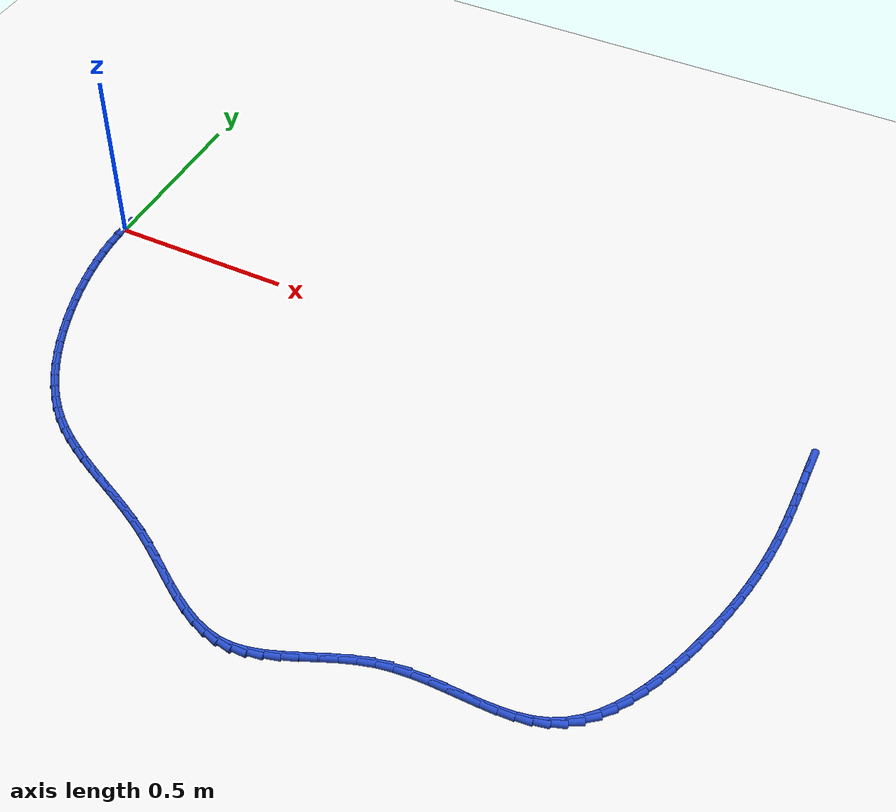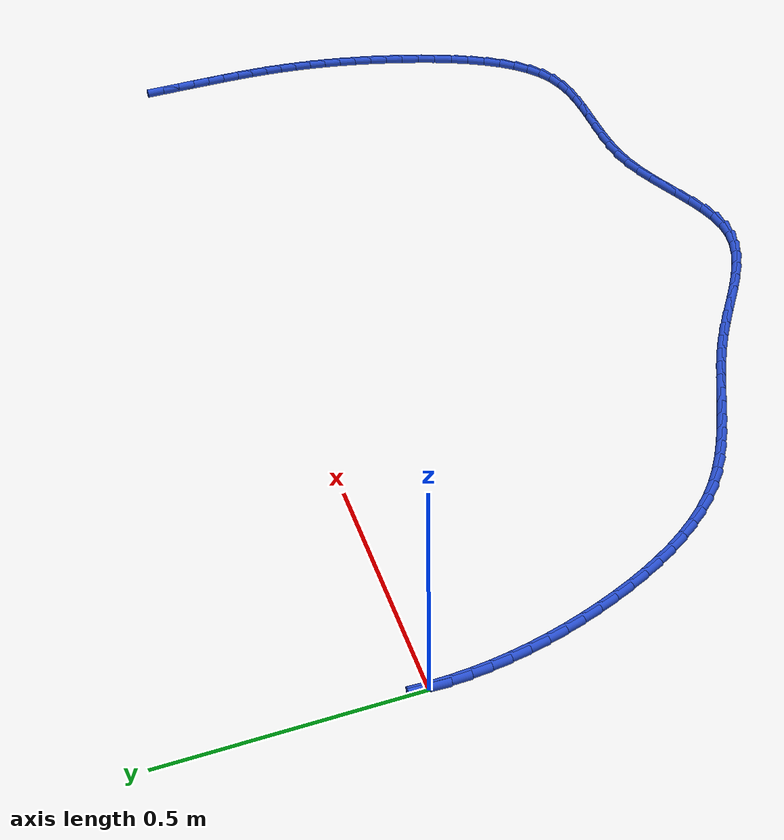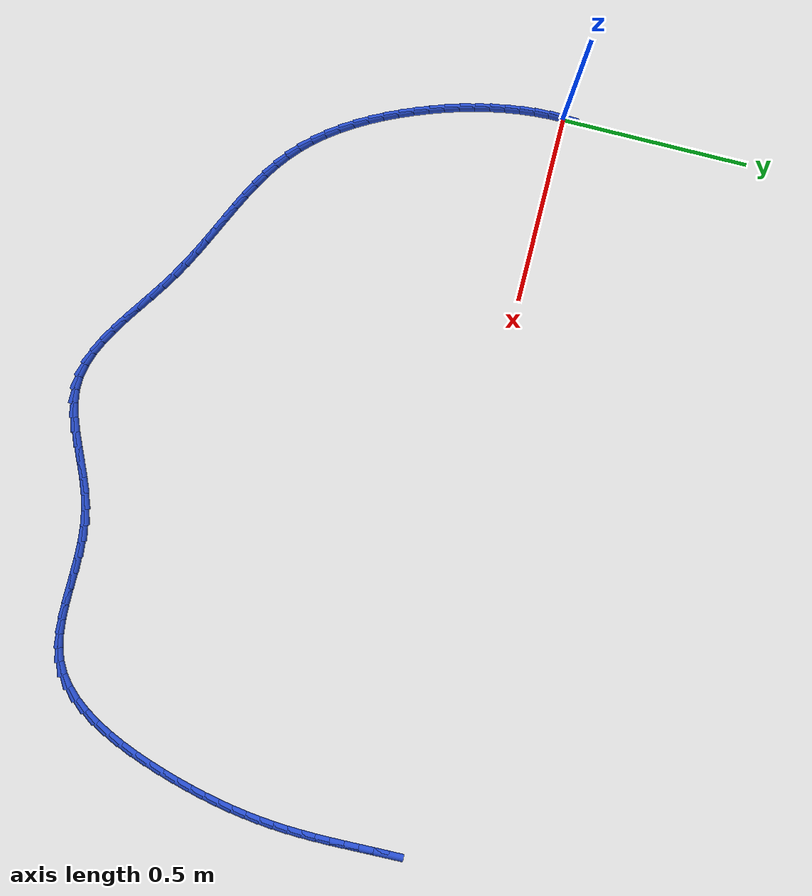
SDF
<sdf version="1.6">
 <world name="default">
  <model name="ground_plane">
   <static>1</static>
   <link name="link">
    <collision name="collision">
     <geometry><plane><normal>0 0 1</normal><size>100 100</size></plane></geometry>
     <surface><friction><ode><mu>100</mu><mu2>50</mu2></ode></friction></surface>
    </collision>
    <visual name="visual">
     <cast_shadows>0</cast_shadows>
     <geometry><plane><normal>0 0 1</normal><size>100 100</size></plane></geometry>
     <material>
      <script><uri>file://media/materials/scripts/gazebo.material</uri><name>Gazebo/WhiteGlow</name></script>
     </material>
    </visual>
   </link>
  </model>
  <model name="line">
   <link name="link_0">
    <pose>-8.673617379884035e-18 -6.938893903907228e-18 0.01 0 1.57 1.5354247967208827</pose>
    <collision name="collision">
     <geometry><cylinder><radius>0.01</radius><length>0.08</length></cylinder></geometry>
    </collision>
    <visual name="visual">
     <material>
      <script><name>Gazebo/Blue</name><uri>file://media/materials/scripts/gazebo.material</uri></script>
     </material>
     <geometry><cylinder><radius>0.01</radius><length>0.08</length></cylinder></geometry>
    </visual>
   </link>
   <link name="link_86">
    <pose>1.9871273706967785 0.016512501588791424 0.01 0 1.57 -1.5531184839204828</pose>
    <collision name="collision">
     <geometry><cylinder><radius>0.01</radius><length>0.08</length></cylinder></geometry>
    </collision>
    <visual name="visual">
     <material>
      <script><name>Gazebo/Blue</name><uri>file://media/materials/scripts/gazebo.material</uri></script>
     </material>
     <geometry><cylinder><radius>0.01</radius><length>0.08</length></cylinder></geometry>
    </visual>
   </link>
   <link name="link_87">
    <pose>1.987824887404786 -0.022940504755535045 0.01 0 1.57 -1.5491338630941902</pose>
    <collision name="collision">
     <geometry><cylinder><radius>0.01</radius><length>0.08</length></cylinder></geometry>
    </collision>
    <visual name="visual">
     <material>
      <script><name>Gazebo/Blue</name><uri>file://media/materials/scripts/gazebo.material</uri></script>
     </material>
     <geometry><cylinder><radius>0.01</radius><length>0.08</length></cylinder></geometry>
    </visual>
   </link>
   <link name="link_88">
    <pose>1.9886739223915606 -0.062128206931765746 0.01 0 1.57 -1.550380317947447</pose>
    <collision name="collision">
     <geometry><cylinder><radius>0.01</radius><length>0.08</length></cylinder></geometry>
    </collision>
    <visual name="visual">
     <material>
      <script><name>Gazebo/Blue</name><uri>file://media/materials/scripts/gazebo.material</uri></script>
     </material>
     <geometry><cylinder><radius>0.01</radius><length>0.08</length></cylinder></geometry>
    </visual>
   </link>
   <link name="link_89">
    <pose>1.9894693003985673 -0.1010813393389412 0.01 0 1.57 -1.5569506180114507</pose>
    <collision name="collision">
     <geometry><cylinder><radius>0.01</radius><length>0.08</length></cylinder></geometry>
    </collision>
    <visual name="visual">
     <material>
      <script><name>Gazebo/Blue</name><uri>file://media/materials/scripts/gazebo.material</uri></script>
     </material>
     <geometry><cylinder><radius>0.01</radius><length>0.08</length></cylinder></geometry>
    </visual>
   </link>
   <link name="link_90">
    <pose>1.990005846167273 -0.13983063637609974 0.01 0 1.57 -1.568915939567218</pose>
    <collision name="collision">
     <geometry><cylinder><radius>0.01</radius><length>0.08</length></cylinder></geometry>
    </collision>
    <visual name="visual">
     <material>
      <script><name>Gazebo/Blue</name><uri>file://media/materials/scripts/gazebo.material</uri></script>
     </material>
     <geometry><cylinder><radius>0.01</radius><length>0.08</length></cylinder></geometry>
    </visual>
   </link>
   <link name="link_91">
    <pose>1.9900783844391432 -0.17840683244228195 0.01 0 1.57 1.5552736331345296</pose>
    <collision name="collision">
     <geometry><cylinder><radius>0.01</radius><length>0.08</length></cylinder></geometry>
    </collision>
    <visual name="visual">
     <material>
      <script><name>Gazebo/Blue</name><uri>file://media/materials/scripts/gazebo.material</uri></script>
     </material>
     <geometry><cylinder><radius>0.01</radius><length>0.08</length></cylinder></geometry>
    </visual>
   </link>
   <link name="link_92">
    <pose>1.9894817399556441 -0.21684066193652746 0.01 0 1.57 1.5324300333425418</pose>
    <collision name="collision">
     <geometry><cylinder><radius>0.01</radius><length>0.08</length></cylinder></geometry>
    </collision>
    <visual name="visual">
     <material>
      <script><name>Gazebo/Blue</name><uri>file://media/materials/scripts/gazebo.material</uri></script>
     </material>
     <geometry><cylinder><radius>0.01</radius><length>0.08</length></cylinder></geometry>
    </visual>
   </link>
   <link name="link_93">
    <pose>1.9880107374582423 -0.2551628592578762 0.01 0 1.57 1.5047178984376517</pose>
    <collision name="collision">
     <geometry><cylinder><radius>0.01</radius><length>0.08</length></cylinder></geometry>
    </collision>
    <visual name="visual">
     <material>
      <script><name>Gazebo/Blue</name><uri>file://media/materials/scripts/gazebo.material</uri></script>
     </material>
     <geometry><cylinder><radius>0.01</radius><length>0.08</length></cylinder></geometry>
    </visual>
   </link>
   <link name="link_94">
    <pose>1.9854797855414854 -0.29340933735297303 0.01 0 1.57 1.475460703808413</pose>
    <collision name="collision">
     <geometry><cylinder><radius>0.01</radius><length>0.08</length></cylinder></geometry>
    </collision>
    <visual name="visual">
     <material>
      <script><name>Gazebo/Blue</name><uri>file://media/materials/scripts/gazebo.material</uri></script>
     </material>
     <geometry><cylinder><radius>0.01</radius><length>0.08</length></cylinder></geometry>
    </visual>
   </link>
   <link name="link_95">
    <pose>1.9818232206098407 -0.33164772161392025 0.01 0 1.57 1.4460886202512069</pose>
    <collision name="collision">
     <geometry><cylinder><radius>0.01</radius><length>0.08</length></cylinder></geometry>
    </collision>
    <visual name="visual">
     <material>
      <script><name>Gazebo/Blue</name><uri>file://media/materials/scripts/gazebo.material</uri></script>
     </material>
     <geometry><cylinder><radius>0.01</radius><length>0.08</length></cylinder></geometry>
    </visual>
   </link>
   <link name="link_96">
    <pose>1.9770207571178047 -0.36995763672587695 0.01 0 1.57 1.416839941180229</pose>
    <collision name="collision">
     <geometry><cylinder><radius>0.01</radius><length>0.08</length></cylinder></geometry>
    </collision>
    <visual name="visual">
     <material>
      <script><name>Gazebo/Blue</name><uri>file://media/materials/scripts/gazebo.material</uri></script>
     </material>
     <geometry><cylinder><radius>0.01</radius><length>0.08</length></cylinder></geometry>
    </visual>
   </link>
   <link name="link_97">
    <pose>1.971052194785527 -0.40841872992075173 0.01 0 1.57 1.3879431167841505</pose>
    <collision name="collision">
     <geometry><cylinder><radius>0.01</radius><length>0.08</length></cylinder></geometry>
    </collision>
    <visual name="visual">
     <material>
      <script><name>Gazebo/Blue</name><uri>file://media/materials/scripts/gazebo.material</uri></script>
     </material>
     <geometry><cylinder><radius>0.01</radius><length>0.08</length></cylinder></geometry>
    </visual>
   </link>
   <link name="link_98">
    <pose>1.9638973333331569 -0.447110648430453 0.01 0 1.57 1.3596121562966297</pose>
    <collision name="collision">
     <geometry><cylinder><radius>0.01</radius><length>0.08</length></cylinder></geometry>
    </collision>
    <visual name="visual">
     <material>
      <script><name>Gazebo/Blue</name><uri>file://media/materials/scripts/gazebo.material</uri></script>
     </material>
     <geometry><cylinder><radius>0.01</radius><length>0.08</length></cylinder></geometry>
    </visual>
   </link>
   <link name="link_99">
    <pose>1.955535972480845 -0.48611303948689044 0.01 0 1.57 1.3320408455141721</pose>
    <collision name="collision">
     <geometry><cylinder><radius>0.01</radius><length>0.08</length></cylinder></geometry>
    </collision>
    <visual name="visual">
     <material>
      <script><name>Gazebo/Blue</name><uri>file://media/materials/scripts/gazebo.material</uri></script>
     </material>
     <geometry><cylinder><radius>0.01</radius><length>0.08</length></cylinder></geometry>
    </visual>
   </link>
   <link name="link_100">
    <pose>1.9459479119487402 -0.5255055503219712 0.01 0 1.57 1.3053983681405932</pose>
    <collision name="collision">
     <geometry><cylinder><radius>0.01</radius><length>0.08</length></cylinder></geometry>
    </collision>
    <visual name="visual">
     <material>
      <script><name>Gazebo/Blue</name><uri>file://media/materials/scripts/gazebo.material</uri></script>
     </material>
     <geometry><cylinder><radius>0.01</radius><length>0.08</length></cylinder></geometry>
    </visual>
   </link>
   <link name="link_101">
    <pose>1.9351129514569925 -0.5653678281676042 0.01 0 1.57 1.279826493453787</pose>
    <collision name="collision">
     <geometry><cylinder><radius>0.01</radius><length>0.08</length></cylinder></geometry>
    </collision>
    <visual name="visual">
     <material>
      <script><name>Gazebo/Blue</name><uri>file://media/materials/scripts/gazebo.material</uri></script>
     </material>
     <geometry><cylinder><radius>0.01</radius><length>0.08</length></cylinder></geometry>
    </visual>
   </link>
   <link name="link_102">
    <pose>1.9230108907257522 -0.6057795202556986 0.01 0 1.57 1.254344058319762</pose>
    <collision name="collision">
     <geometry><cylinder><radius>0.01</radius><length>0.08</length></cylinder></geometry>
    </collision>
    <visual name="visual">
     <material>
      <script><name>Gazebo/Blue</name><uri>file://media/materials/scripts/gazebo.material</uri></script>
     </material>
     <geometry><cylinder><radius>0.01</radius><length>0.08</length></cylinder></geometry>
    </visual>
   </link>
   <link name="link_103">
    <pose>1.9096048084788897 -0.6467195387782416 0.01 0 1.57 1.223397689288586</pose>
    <collision name="collision">
     <geometry><cylinder><radius>0.01</radius><length>0.08</length></cylinder></geometry>
    </collision>
    <visual name="visual">
     <material>
      <script><name>Gazebo/Blue</name><uri>file://media/materials/scripts/gazebo.material</uri></script>
     </material>
     <geometry><cylinder><radius>0.01</radius><length>0.08</length></cylinder></geometry>
    </visual>
   </link>
   <link name="link_104">
    <pose>1.8947759521301806 -0.687673806146413 0.01 0 1.57 1.184446658937928</pose>
    <collision name="collision">
     <geometry><cylinder><radius>0.01</radius><length>0.08</length></cylinder></geometry>
    </collision>
    <visual name="visual">
     <material>
      <script><name>Gazebo/Blue</name><uri>file://media/materials/scripts/gazebo.material</uri></script>
     </material>
     <geometry><cylinder><radius>0.01</radius><length>0.08</length></cylinder></geometry>
    </visual>
   </link>
   <link name="link_105">
    <pose>1.878380575174376 -0.7279776698063178 0.01 0 1.57 1.1360475936975376</pose>
    <collision name="collision">
     <geometry><cylinder><radius>0.01</radius><length>0.08</length></cylinder></geometry>
    </collision>
    <visual name="visual">
     <material>
      <script><name>Gazebo/Blue</name><uri>file://media/materials/scripts/gazebo.material</uri></script>
     </material>
     <geometry><cylinder><radius>0.01</radius><length>0.08</length></cylinder></geometry>
    </visual>
   </link>
   <link name="link_106">
    <pose>1.8602749248964308 -0.7669664397933569 0.01 0 1.57 1.0761899053514712</pose>
    <collision name="collision">
     <geometry><cylinder><radius>0.01</radius><length>0.08</length></cylinder></geometry>
    </collision>
    <visual name="visual">
     <material>
      <script><name>Gazebo/Blue</name><uri>file://media/materials/scripts/gazebo.material</uri></script>
     </material>
     <geometry><cylinder><radius>0.01</radius><length>0.08</length></cylinder></geometry>
    </visual>
   </link>
   <link name="link_107">
    <pose>1.8403152485812968 -0.80397542614293 0.01 0 1.57 1.0022232243886162</pose>
    <collision name="collision">
     <geometry><cylinder><radius>0.01</radius><length>0.08</length></cylinder></geometry>
    </collision>
    <visual name="visual">
     <material>
      <script><name>Gazebo/Blue</name><uri>file://media/materials/scripts/gazebo.material</uri></script>
     </material>
     <geometry><cylinder><radius>0.01</radius><length>0.08</length></cylinder></geometry>
    </visual>
   </link>
   <link name="link_108">
    <pose>1.8183577935139283 -0.8383399388904377 0.01 0 1.57 0.9108610900474269</pose>
    <collision name="collision">
     <geometry><cylinder><radius>0.01</radius><length>0.08</length></cylinder></geometry>
    </collision>
    <visual name="visual">
     <material>
      <script><name>Gazebo/Blue</name><uri>file://media/materials/scripts/gazebo.material</uri></script>
     </material>
     <geometry><cylinder><radius>0.01</radius><length>0.08</length></cylinder></geometry>
    </visual>
   </link>
   <link name="link_109">
    <pose>1.7942588069792786 -0.8693952880712793 0.01 0 1.57 0.7984380104131765</pose>
    <collision name="collision">
     <geometry><cylinder><radius>0.01</radius><length>0.08</length></cylinder></geometry>
    </collision>
    <visual name="visual">
     <material>
      <script><name>Gazebo/Blue</name><uri>file://media/materials/scripts/gazebo.material</uri></script>
     </material>
     <geometry><cylinder><radius>0.01</radius><length>0.08</length></cylinder></geometry>
    </visual>
   </link>
   <link name="link_110">
    <pose>1.767874536262302 -0.8964767837208562 0.01 0 1.57 0.6617477837319509</pose>
    <collision name="collision">
     <geometry><cylinder><radius>0.01</radius><length>0.08</length></cylinder></geometry>
    </collision>
    <visual name="visual">
     <material>
      <script><name>Gazebo/Blue</name><uri>file://media/materials/scripts/gazebo.material</uri></script>
     </material>
     <geometry><cylinder><radius>0.01</radius><length>0.08</length></cylinder></geometry>
    </visual>
   </link>
   <link name="link_111">
    <pose>1.7390612286479519 -0.9189197358745662 0.01 0 1.57 0.49998367376421343</pose>
    <collision name="collision">
     <geometry><cylinder><radius>0.01</radius><length>0.08</length></cylinder></geometry>
    </collision>
    <visual name="visual">
     <material>
      <script><name>Gazebo/Blue</name><uri>file://media/materials/scripts/gazebo.material</uri></script>
     </material>
     <geometry><cylinder><radius>0.01</radius><length>0.08</length></cylinder></geometry>
    </visual>
   </link>
   <link name="link_112">
    <pose>1.707676652923351 -0.9360645424280091 0.01 0 1.57 0.33276255093690854</pose>
    <collision name="collision">
     <geometry><cylinder><radius>0.01</radius><length>0.08</length></cylinder></geometry>
    </collision>
    <visual name="visual">
     <material>
      <script><name>Gazebo/Blue</name><uri>file://media/materials/scripts/gazebo.material</uri></script>
     </material>
     <geometry><cylinder><radius>0.01</radius><length>0.08</length></cylinder></geometry>
    </visual>
   </link>
   <link name="link_113">
    <pose>1.6737405822214424 -0.9477933392250637 0.01 0 1.57 0.1967735387246202</pose>
    <collision name="collision">
     <geometry><cylinder><radius>0.01</radius><length>0.08</length></cylinder></geometry>
    </collision>
    <visual name="visual">
     <material>
      <script><name>Gazebo/Blue</name><uri>file://media/materials/scripts/gazebo.material</uri></script>
     </material>
     <geometry><cylinder><radius>0.01</radius><length>0.08</length></cylinder></geometry>
    </visual>
   </link>
   <link name="link_114">
    <pose>1.637576190437196 -0.9550028256726496 0.01 0 1.57 0.09692806313039837</pose>
    <collision name="collision">
     <geometry><cylinder><radius>0.01</radius><length>0.08</length></cylinder></geometry>
    </collision>
    <visual name="visual">
     <material>
      <script><name>Gazebo/Blue</name><uri>file://media/materials/scripts/gazebo.material</uri></script>
     </material>
     <geometry><cylinder><radius>0.01</radius><length>0.08</length></cylinder></geometry>
    </visual>
   </link>
   <link name="link_115">
    <pose>1.5995399917387267 -0.9587011901076786 0.01 0 1.57 0.03021547087737187</pose>
    <collision name="collision">
     <geometry><cylinder><radius>0.01</radius><length>0.08</length></cylinder></geometry>
    </collision>
    <visual name="visual">
     <material>
      <script><name>Gazebo/Blue</name><uri>file://media/materials/scripts/gazebo.material</uri></script>
     </material>
     <geometry><cylinder><radius>0.01</radius><length>0.08</length></cylinder></geometry>
    </visual>
   </link>
   <link name="link_116">
    <pose>1.5599885002941516 -0.9598966208670618 0.01 0 1.57 -0.007352178849760305</pose>
    <collision name="collision">
     <geometry><cylinder><radius>0.01</radius><length>0.08</length></cylinder></geometry>
    </collision>
    <visual name="visual">
     <material>
      <script><name>Gazebo/Blue</name><uri>file://media/materials/scripts/gazebo.material</uri></script>
     </material>
     <geometry><cylinder><radius>0.01</radius><length>0.08</length></cylinder></geometry>
    </visual>
   </link>
   <link name="link_117">
    <pose>1.5192782302715855 -0.9595973062877111 0.01 0 1.57 -0.018928685797744947</pose>
    <collision name="collision">
     <geometry><cylinder><radius>0.01</radius><length>0.08</length></cylinder></geometry>
    </collision>
    <visual name="visual">
     <material>
      <script><name>Gazebo/Blue</name><uri>file://media/materials/scripts/gazebo.material</uri></script>
     </material>
     <geometry><cylinder><radius>0.01</radius><length>0.08</length></cylinder></geometry>
    </visual>
   </link>
   <link name="link_118">
    <pose>1.477765695839145 -0.9588114347065384 0.01 0 1.57 -0.006297606179173999</pose>
    <collision name="collision">
     <geometry><cylinder><radius>0.01</radius><length>0.08</length></cylinder></geometry>
    </collision>
    <visual name="visual">
     <material>
      <script><name>Gazebo/Blue</name><uri>file://media/materials/scripts/gazebo.material</uri></script>
     </material>
     <geometry><cylinder><radius>0.01</radius><length>0.08</length></cylinder></geometry>
    </visual>
   </link>
   <link name="link_119">
    <pose>1.4358074111649457 -0.9585471944604551 0.01 0 1.57 0.030089704044023103</pose>
    <collision name="collision">
     <geometry><cylinder><radius>0.01</radius><length>0.08</length></cylinder></geometry>
    </collision>
    <visual name="visual">
     <material>
      <script><name>Gazebo/Blue</name><uri>file://media/materials/scripts/gazebo.material</uri></script>
     </material>
     <geometry><cylinder><radius>0.01</radius><length>0.08</length></cylinder></geometry>
    </visual>
   </link>
   <link name="link_120">
    <pose>1.393759890417103 -0.959812773886373 0.01 0 1.57 0.09078768367420385</pose>
    <collision name="collision">
     <geometry><cylinder><radius>0.01</radius><length>0.08</length></cylinder></geometry>
    </collision>
    <visual name="visual">
     <material>
      <script><name>Gazebo/Blue</name><uri>file://media/materials/scripts/gazebo.material</uri></script>
     </material>
     <geometry><cylinder><radius>0.01</radius><length>0.08</length></cylinder></geometry>
    </visual>
   </link>
   <link name="link_121">
    <pose>1.3519796477637323 -0.9636163613212038 0.01 0 1.57 0.17671631585836953</pose>
    <collision name="collision">
     <geometry><cylinder><radius>0.01</radius><length>0.08</length></cylinder></geometry>
    </collision>
    <visual name="visual">
     <material>
      <script><name>Gazebo/Blue</name><uri>file://media/materials/scripts/gazebo.material</uri></script>
     </material>
     <geometry><cylinder><radius>0.01</radius><length>0.08</length></cylinder></geometry>
    </visual>
   </link>
   <link name="link_122">
    <pose>1.3108231792126759 -0.9709660475144191 0.01 0 1.57 0.2767557462642405</pose>
    <collision name="collision">
     <geometry><cylinder><radius>0.01</radius><length>0.08</length></cylinder></geometry>
    </collision>
    <visual name="visual">
     <material>
      <script><name>Gazebo/Blue</name><uri>file://media/materials/scripts/gazebo.material</uri></script>
     </material>
     <geometry><cylinder><radius>0.01</radius><length>0.08</length></cylinder></geometry>
    </visual>
   </link>
   <link name="link_123">
    <pose>1.2705600156515258 -0.9824026007986155 0.01 0 1.57 0.3530871478467115</pose>
    <collision name="collision">
     <geometry><cylinder><radius>0.01</radius><length>0.08</length></cylinder></geometry>
    </collision>
    <visual name="visual">
     <material>
      <script><name>Gazebo/Blue</name><uri>file://media/materials/scripts/gazebo.material</uri></script>
     </material>
     <geometry><cylinder><radius>0.01</radius><length>0.08</length></cylinder></geometry>
    </visual>
   </link>
   <link name="link_124">
    <pose>1.231171556995945 -0.9969184668939054 0.01 0 1.57 0.398921906361718</pose>
    <collision name="collision">
     <geometry><cylinder><radius>0.01</radius><length>0.08</length></cylinder></geometry>
    </collision>
    <visual name="visual">
     <material>
      <script><name>Gazebo/Blue</name><uri>file://media/materials/scripts/gazebo.material</uri></script>
     </material>
     <geometry><cylinder><radius>0.01</radius><length>0.08</length></cylinder></geometry>
    </visual>
   </link>
   <link name="link_125">
    <pose>1.1925796104531654 -1.0131858595877332 0.01 0 1.57 0.4150981714318675</pose>
    <collision name="collision">
     <geometry><cylinder><radius>0.01</radius><length>0.08</length></cylinder></geometry>
    </collision>
    <visual name="visual">
     <material>
      <script><name>Gazebo/Blue</name><uri>file://media/materials/scripts/gazebo.material</uri></script>
     </material>
     <geometry><cylinder><radius>0.01</radius><length>0.08</length></cylinder></geometry>
    </visual>
   </link>
   <link name="link_126">
    <pose>1.1547059832304178 -1.0298769926675428 0.01 0 1.57 0.40102522216932013</pose>
    <collision name="collision">
     <geometry><cylinder><radius>0.01</radius><length>0.08</length></cylinder></geometry>
    </collision>
    <visual name="visual">
     <material>
      <script><name>Gazebo/Blue</name><uri>file://media/materials/scripts/gazebo.material</uri></script>
     </material>
     <geometry><cylinder><radius>0.01</radius><length>0.08</length></cylinder></geometry>
    </visual>
   </link>
   <link name="link_127">
    <pose>1.1174724825349367 -1.0456640799207788 0.01 0 1.57 0.354062684556294</pose>
    <collision name="collision">
     <geometry><cylinder><radius>0.01</radius><length>0.08</length></cylinder></geometry>
    </collision>
    <visual name="visual">
     <material>
      <script><name>Gazebo/Blue</name><uri>file://media/materials/scripts/gazebo.material</uri></script>
     </material>
     <geometry><cylinder><radius>0.01</radius><length>0.08</length></cylinder></geometry>
    </visual>
   </link>
   <link name="link_128">
    <pose>1.0808009155739529 -1.0592193351348853 0.01 0 1.57 0.26949586164165984</pose>
    <collision name="collision">
     <geometry><cylinder><radius>0.01</radius><length>0.08</length></cylinder></geometry>
    </collision>
    <visual name="visual">
     <material>
      <script><name>Gazebo/Blue</name><uri>file://media/materials/scripts/gazebo.material</uri></script>
     </material>
     <geometry><cylinder><radius>0.01</radius><length>0.08</length></cylinder></geometry>
    </visual>
   </link>
   <link name="link_129">
    <pose>1.0446130895546983 -1.0692149720973065 0.01 0 1.57 0.14180060738592193</pose>
    <collision name="collision">
     <geometry><cylinder><radius>0.01</radius><length>0.08</length></cylinder></geometry>
    </collision>
    <visual name="visual">
     <material>
      <script><name>Gazebo/Blue</name><uri>file://media/materials/scripts/gazebo.material</uri></script>
     </material>
     <geometry><cylinder><radius>0.01</radius><length>0.08</length></cylinder></geometry>
    </visual>
   </link>
   <link name="link_130">
    <pose>1.0088308116844056 -1.0743232045954867 0.01 0 1.57 -0.02834585316318928</pose>
    <collision name="collision">
     <geometry><cylinder><radius>0.01</radius><length>0.08</length></cylinder></geometry>
    </collision>
    <visual name="visual">
     <material>
      <script><name>Gazebo/Blue</name><uri>file://media/materials/scripts/gazebo.material</uri></script>
     </material>
     <geometry><cylinder><radius>0.01</radius><length>0.08</length></cylinder></geometry>
    </visual>
   </link>
   <link name="link_131">
    <pose>0.9733759048426426 -1.0733179357575335 0.01 0 1.57 -0.19853507134485412</pose>
    <collision name="collision">
     <geometry><cylinder><radius>0.01</radius><length>0.08</length></cylinder></geometry>
    </collision>
    <visual name="visual">
     <material>
      <script><name>Gazebo/Blue</name><uri>file://media/materials/scripts/gazebo.material</uri></script>
     </material>
     <geometry><cylinder><radius>0.01</radius><length>0.08</length></cylinder></geometry>
    </visual>
   </link>
   <link name="link_132">
    <pose>0.9381703864130602 -1.0662351007662396 0.01 0 1.57 -0.33689711949357715</pose>
    <collision name="collision">
     <geometry><cylinder><radius>0.01</radius><length>0.08</length></cylinder></geometry>
    </collision>
    <visual name="visual">
     <material>
      <script><name>Gazebo/Blue</name><uri>file://media/materials/scripts/gazebo.material</uri></script>
     </material>
     <geometry><cylinder><radius>0.01</radius><length>0.08</length></cylinder></geometry>
    </visual>
   </link>
   <link name="link_133">
    <pose>0.903136405371355 -1.053964464626466 0.01 0 1.57 -0.4424183195845654</pose>
    <collision name="collision">
     <geometry><cylinder><radius>0.01</radius><length>0.08</length></cylinder></geometry>
    </collision>
    <visual name="visual">
     <material>
      <script><name>Gazebo/Blue</name><uri>file://media/materials/scripts/gazebo.material</uri></script>
     </material>
     <geometry><cylinder><radius>0.01</radius><length>0.08</length></cylinder></geometry>
    </visual>
   </link>
   <link name="link_134">
    <pose>0.8681961131777999 -1.0374119134073538 0.01 0 1.57 -0.5185361365623715</pose>
    <collision name="collision">
     <geometry><cylinder><radius>0.01</radius><length>0.08</length></cylinder></geometry>
    </collision>
    <visual name="visual">
     <material>
      <script><name>Gazebo/Blue</name><uri>file://media/materials/scripts/gazebo.material</uri></script>
     </material>
     <geometry><cylinder><radius>0.01</radius><length>0.08</length></cylinder></geometry>
    </visual>
   </link>
   <link name="link_135">
    <pose>0.8332716612926672 -1.0174833331780437 0.01 0 1.57 -0.5694629974605177</pose>
    <collision name="collision">
     <geometry><cylinder><radius>0.01</radius><length>0.08</length></cylinder></geometry>
    </collision>
    <visual name="visual">
     <material>
      <script><name>Gazebo/Blue</name><uri>file://media/materials/scripts/gazebo.material</uri></script>
     </material>
     <geometry><cylinder><radius>0.01</radius><length>0.08</length></cylinder></geometry>
    </visual>
   </link>
   <link name="link_136">
    <pose>0.7982852011762286 -0.995084610007676 0.01 0 1.57 -0.5986757399117454</pose>
    <collision name="collision">
     <geometry><cylinder><radius>0.01</radius><length>0.08</length></cylinder></geometry>
    </collision>
    <visual name="visual">
     <material>
      <script><name>Gazebo/Blue</name><uri>file://media/materials/scripts/gazebo.material</uri></script>
     </material>
     <geometry><cylinder><radius>0.01</radius><length>0.08</length></cylinder></geometry>
    </visual>
   </link>
   <link name="link_137">
    <pose>0.7631588842887583 -0.9711216299653925 0.01 0 1.57 -0.6084538678998979</pose>
    <collision name="collision">
     <geometry><cylinder><radius>0.01</radius><length>0.08</length></cylinder></geometry>
    </collision>
    <visual name="visual">
     <material>
      <script><name>Gazebo/Blue</name><uri>file://media/materials/scripts/gazebo.material</uri></script>
     </material>
     <geometry><cylinder><radius>0.01</radius><length>0.08</length></cylinder></geometry>
    </visual>
   </link>
   <link name="link_138">
    <pose>0.727814862090528 -0.9465002791203339 0.01 0 1.57 -0.5998373259557764</pose>
    <collision name="collision">
     <geometry><cylinder><radius>0.01</radius><length>0.08</length></cylinder></geometry>
    </collision>
    <visual name="visual">
     <material>
      <script><name>Gazebo/Blue</name><uri>file://media/materials/scripts/gazebo.material</uri></script>
     </material>
     <geometry><cylinder><radius>0.01</radius><length>0.08</length></cylinder></geometry>
    </visual>
   </link>
   <link name="link_139">
    <pose>0.6921752860418101 -0.9221264435416403 0.01 0 1.57 -0.5726979144375715</pose>
    <collision name="collision">
     <geometry><cylinder><radius>0.01</radius><length>0.08</length></cylinder></geometry>
    </collision>
    <visual name="visual">
     <material>
      <script><name>Gazebo/Blue</name><uri>file://media/materials/scripts/gazebo.material</uri></script>
     </material>
     <geometry><cylinder><radius>0.01</radius><length>0.08</length></cylinder></geometry>
    </visual>
   </link>
   <link name="link_140">
    <pose>0.6561623200413852 -0.8989059499515467 0.01 0 1.57 -0.5318303432649775</pose>
    <collision name="collision">
     <geometry><cylinder><radius>0.01</radius><length>0.08</length></cylinder></geometry>
    </collision>
    <visual name="visual">
     <material>
      <script><name>Gazebo/Blue</name><uri>file://media/materials/scripts/gazebo.material</uri></script>
     </material>
     <geometry><cylinder><radius>0.01</radius><length>0.08</length></cylinder></geometry>
    </visual>
   </link>
   <link name="link_141">
    <pose>0.6197528739125093 -0.877483420012888 0.01 0 1.57 -0.4961929959450669</pose>
    <collision name="collision">
     <geometry><cylinder><radius>0.01</radius><length>0.08</length></cylinder></geometry>
    </collision>
    <visual name="visual">
     <material>
      <script><name>Gazebo/Blue</name><uri>file://media/materials/scripts/gazebo.material</uri></script>
     </material>
     <geometry><cylinder><radius>0.01</radius><length>0.08</length></cylinder></geometry>
    </visual>
   </link>
   <link name="link_142">
    <pose>0.5831042143776962 -0.8576429522530247 0.01 0 1.57 -0.47026431156696524</pose>
    <collision name="collision">
     <geometry><cylinder><radius>0.01</radius><length>0.08</length></cylinder></geometry>
    </collision>
    <visual name="visual">
     <material>
      <script><name>Gazebo/Blue</name><uri>file://media/materials/scripts/gazebo.material</uri></script>
     </material>
     <geometry><cylinder><radius>0.01</radius><length>0.08</length></cylinder></geometry>
    </visual>
   </link>
   <link name="link_143">
    <pose>0.5464106954702233 -0.8389916933384591 0.01 0 1.57 -0.4544748910812031</pose>
    <collision name="collision">
     <geometry><cylinder><radius>0.01</radius><length>0.08</length></cylinder></geometry>
    </collision>
    <visual name="visual">
     <material>
      <script><name>Gazebo/Blue</name><uri>file://media/materials/scripts/gazebo.material</uri></script>
     </material>
     <geometry><cylinder><radius>0.01</radius><length>0.08</length></cylinder></geometry>
    </visual>
   </link>
   <link name="link_144">
    <pose>0.5098666712233656 -0.8211367899356932 0.01 0 1.57 -0.44920957167445674</pose>
    <collision name="collision">
     <geometry><cylinder><radius>0.01</radius><length>0.08</length></cylinder></geometry>
    </collision>
    <visual name="visual">
     <material>
      <script><name>Gazebo/Blue</name><uri>file://media/materials/scripts/gazebo.material</uri></script>
     </material>
     <geometry><cylinder><radius>0.01</radius><length>0.08</length></cylinder></geometry>
    </visual>
   </link>
   <link name="link_145">
    <pose>0.4736664956703987 -0.8036853887112289 0.01 0 1.57 -0.45485528533683933</pose>
    <collision name="collision">
     <geometry><cylinder><radius>0.01</radius><length>0.08</length></cylinder></geometry>
    </collision>
    <visual name="visual">
     <material>
      <script><name>Gazebo/Blue</name><uri>file://media/materials/scripts/gazebo.material</uri></script>
     </material>
     <geometry><cylinder><radius>0.01</radius><length>0.08</length></cylinder></geometry>
    </visual>
   </link>
   <link name="link_146">
    <pose>0.4380045228445984 -0.7862446363315679 0.01 0 1.57 -0.4718189947839089</pose>
    <collision name="collision">
     <geometry><cylinder><radius>0.01</radius><length>0.08</length></cylinder></geometry>
    </collision>
    <visual name="visual">
     <material>
      <script><name>Gazebo/Blue</name><uri>file://media/materials/scripts/gazebo.material</uri></script>
     </material>
     <geometry><cylinder><radius>0.01</radius><length>0.08</length></cylinder></geometry>
    </visual>
   </link>
   <link name="link_147">
    <pose>0.40307510677923997 -0.7684216794632117 0.01 0 1.57 -0.5005063418823695</pose>
    <collision name="collision">
     <geometry><cylinder><radius>0.01</radius><length>0.08</length></cylinder></geometry>
    </collision>
    <visual name="visual">
     <material>
      <script><name>Gazebo/Blue</name><uri>file://media/materials/scripts/gazebo.material</uri></script>
     </material>
     <geometry><cylinder><radius>0.01</radius><length>0.08</length></cylinder></geometry>
    </visual>
   </link>
   <link name="link_148">
    <pose>0.36907260150760046 -0.7498236647726634 0.01 0 1.57 -0.5412505442898212</pose>
    <collision name="collision">
     <geometry><cylinder><radius>0.01</radius><length>0.08</length></cylinder></geometry>
    </collision>
    <visual name="visual">
     <material>
      <script><name>Gazebo/Blue</name><uri>file://media/materials/scripts/gazebo.material</uri></script>
     </material>
     <geometry><cylinder><radius>0.01</radius><length>0.08</length></cylinder></geometry>
    </visual>
   </link>
   <link name="link_149">
    <pose>0.336191361062955 -0.7300577389264243 0.01 0 1.57 -0.594182549049796</pose>
    <collision name="collision">
     <geometry><cylinder><radius>0.01</radius><length>0.08</length></cylinder></geometry>
    </collision>
    <visual name="visual">
     <material>
      <script><name>Gazebo/Blue</name><uri>file://media/materials/scripts/gazebo.material</uri></script>
     </material>
     <geometry><cylinder><radius>0.01</radius><length>0.08</length></cylinder></geometry>
    </visual>
   </link>
   <link name="link_150">
    <pose>0.3046257394785793 -0.7087310485909964 0.01 0 1.57 -0.6590435373553538</pose>
    <collision name="collision">
     <geometry><cylinder><radius>0.01</radius><length>0.08</length></cylinder></geometry>
    </collision>
    <visual name="visual">
     <material>
      <script><name>Gazebo/Blue</name><uri>file://media/materials/scripts/gazebo.material</uri></script>
     </material>
     <geometry><cylinder><radius>0.01</radius><length>0.08</length></cylinder></geometry>
    </visual>
   </link>
   <link name="link_151">
    <pose>0.27457009078774913 -0.6854507404328815 0.01 0 1.57 -0.734551422909525</pose>
    <collision name="collision">
     <geometry><cylinder><radius>0.01</radius><length>0.08</length></cylinder></geometry>
    </collision>
    <visual name="visual">
     <material>
      <script><name>Gazebo/Blue</name><uri>file://media/materials/scripts/gazebo.material</uri></script>
     </material>
     <geometry><cylinder><radius>0.01</radius><length>0.08</length></cylinder></geometry>
    </visual>
   </link>
   <link name="link_152">
    <pose>0.246212613401969 -0.6598397509972538 0.01 0 1.57 -0.8111345655446323</pose>
    <collision name="collision">
     <geometry><cylinder><radius>0.01</radius><length>0.08</length></cylinder></geometry>
    </collision>
    <visual name="visual">
     <material>
      <script><name>Gazebo/Blue</name><uri>file://media/materials/scripts/gazebo.material</uri></script>
     </material>
     <geometry><cylinder><radius>0.01</radius><length>0.08</length></cylinder></geometry>
    </visual>
   </link>
   <link name="link_153">
    <pose>0.21961746508387922 -0.6318391953770818 0.01 0 1.57 -0.880865217860028</pose>
    <collision name="collision">
     <geometry><cylinder><radius>0.01</radius><length>0.08</length></cylinder></geometry>
    </collision>
    <visual name="visual">
     <material>
      <script><name>Gazebo/Blue</name><uri>file://media/materials/scripts/gazebo.material</uri></script>
     </material>
     <geometry><cylinder><radius>0.01</radius><length>0.08</length></cylinder></geometry>
    </visual>
   </link>
   <link name="link_154">
    <pose>0.19473378868121635 -0.601685215166201 0.01 0 1.57 -0.943818857189234</pose>
    <collision name="collision">
     <geometry><cylinder><radius>0.01</radius><length>0.08</length></cylinder></geometry>
    </collision>
    <visual name="visual">
     <material>
      <script><name>Gazebo/Blue</name><uri>file://media/materials/scripts/gazebo.material</uri></script>
     </material>
     <geometry><cylinder><radius>0.01</radius><length>0.08</length></cylinder></geometry>
    </visual>
   </link>
   <link name="link_155">
    <pose>0.17150637979705777 -0.5696251031415833 0.01 0 1.57 -1.0005113684297962</pose>
    <collision name="collision">
     <geometry><cylinder><radius>0.01</radius><length>0.08</length></cylinder></geometry>
    </collision>
    <visual name="visual">
     <material>
      <script><name>Gazebo/Blue</name><uri>file://media/materials/scripts/gazebo.material</uri></script>
     </material>
     <geometry><cylinder><radius>0.01</radius><length>0.08</length></cylinder></geometry>
    </visual>
   </link>
   <link name="link_156">
    <pose>0.14988003403448147 -0.5359061520802018 0.01 0 1.57 -1.0515232490834465</pose>
    <collision name="collision">
     <geometry><cylinder><radius>0.01</radius><length>0.08</length></cylinder></geometry>
    </collision>
    <visual name="visual">
     <material>
      <script><name>Gazebo/Blue</name><uri>file://media/materials/scripts/gazebo.material</uri></script>
     </material>
     <geometry><cylinder><radius>0.01</radius><length>0.08</length></cylinder></geometry>
    </visual>
   </link>
   <link name="link_157">
    <pose>0.12979954699656523 -0.5007756547590286 0.01 0 1.57 -1.097443812172043</pose>
    <collision name="collision">
     <geometry><cylinder><radius>0.01</radius><length>0.08</length></cylinder></geometry>
    </collision>
    <visual name="visual">
     <material>
      <script><name>Gazebo/Blue</name><uri>file://media/materials/scripts/gazebo.material</uri></script>
     </material>
     <geometry><cylinder><radius>0.01</radius><length>0.08</length></cylinder></geometry>
    </visual>
   </link>
   <link name="link_158">
    <pose>0.11120971428638679 -0.46448090395503644 0.01 0 1.57 -1.1388373368690687</pose>
    <collision name="collision">
     <geometry><cylinder><radius>0.01</radius><length>0.08</length></cylinder></geometry>
    </collision>
    <visual name="visual">
     <material>
      <script><name>Gazebo/Blue</name><uri>file://media/materials/scripts/gazebo.material</uri></script>
     </material>
     <geometry><cylinder><radius>0.01</radius><length>0.08</length></cylinder></geometry>
    </visual>
   </link>
   <link name="link_159">
    <pose>0.09405533150702465 -0.42726919244519895 0.01 0 1.57 -1.1762250043634794</pose>
    <collision name="collision">
     <geometry><cylinder><radius>0.01</radius><length>0.08</length></cylinder></geometry>
    </collision>
    <visual name="visual">
     <material>
      <script><name>Gazebo/Blue</name><uri>file://media/materials/scripts/gazebo.material</uri></script>
     </material>
     <geometry><cylinder><radius>0.01</radius><length>0.08</length></cylinder></geometry>
    </visual>
   </link>
   <link name="link_160">
    <pose>0.07828119426155641 -0.38938781300648834 0.01 0 1.57 -1.2100912507883592</pose>
    <collision name="collision">
     <geometry><cylinder><radius>0.01</radius><length>0.08</length></cylinder></geometry>
    </collision>
    <visual name="visual">
     <material>
      <script><name>Gazebo/Blue</name><uri>file://media/materials/scripts/gazebo.material</uri></script>
     </material>
     <geometry><cylinder><radius>0.01</radius><length>0.08</length></cylinder></geometry>
    </visual>
   </link>
   <link name="link_161">
    <pose>0.06383246321509477 -0.3510834035902226 0.01 0 1.57 -1.2422950141030913</pose>
    <collision name="collision">
     <geometry><cylinder><radius>0.01</radius><length>0.08</length></cylinder></geometry>
    </collision>
    <visual name="visual">
     <material>
      <script><name>Gazebo/Blue</name><uri>file://media/materials/scripts/gazebo.material</uri></script>
     </material>
     <geometry><cylinder><radius>0.01</radius><length>0.08</length></cylinder></geometry>
    </visual>
   </link>
   <link name="link_162">
    <pose>0.05069273557372221 -0.312533657062494 0.01 0 1.57 -1.2757549214275274</pose>
    <collision name="collision">
     <geometry><cylinder><radius>0.01</radius><length>0.08</length></cylinder></geometry>
    </collision>
    <visual name="visual">
     <material>
      <script><name>Gazebo/Blue</name><uri>file://media/materials/scripts/gazebo.material</uri></script>
     </material>
     <geometry><cylinder><radius>0.01</radius><length>0.08</length></cylinder></geometry>
    </visual>
   </link>
   <link name="link_163">
    <pose>0.038917356103073335 -0.273787569963365 0.01 0 1.57 -1.3108540111714748</pose>
    <collision name="collision">
     <geometry><cylinder><radius>0.01</radius><length>0.08</length></cylinder></geometry>
    </collision>
    <visual name="visual">
     <material>
      <script><name>Gazebo/Blue</name><uri>file://media/materials/scripts/gazebo.material</uri></script>
     </material>
     <geometry><cylinder><radius>0.01</radius><length>0.08</length></cylinder></geometry>
    </visual>
   </link>
   <link name="link_164">
    <pose>0.02856952184375808 -0.23488005390866726 0.01 0 1.57 -1.3476676004071366</pose>
    <collision name="collision">
     <geometry><cylinder><radius>0.01</radius><length>0.08</length></cylinder></geometry>
    </collision>
    <visual name="visual">
     <material>
      <script><name>Gazebo/Blue</name><uri>file://media/materials/scripts/gazebo.material</uri></script>
     </material>
     <geometry><cylinder><radius>0.01</radius><length>0.08</length></cylinder></geometry>
    </visual>
   </link>
   <link name="link_165">
    <pose>0.019712429836385725 -0.19584602051423 0.01 0 1.57 -1.3862609370825552</pose>
    <collision name="collision">
     <geometry><cylinder><radius>0.01</radius><length>0.08</length></cylinder></geometry>
    </collision>
    <visual name="visual">
     <material>
      <script><name>Gazebo/Blue</name><uri>file://media/materials/scripts/gazebo.material</uri></script>
     </material>
     <geometry><cylinder><radius>0.01</radius><length>0.08</length></cylinder></geometry>
    </visual>
   </link>
   <link name="link_166">
    <pose>0.012409277121565768 -0.15672038139588323 0.01 0 1.57 -1.4266854729603349</pose>
    <collision name="collision">
     <geometry><cylinder><radius>0.01</radius><length>0.08</length></cylinder></geometry>
    </collision>
    <visual name="visual">
     <material>
      <script><name>Gazebo/Blue</name><uri>file://media/materials/scripts/gazebo.material</uri></script>
     </material>
     <geometry><cylinder><radius>0.01</radius><length>0.08</length></cylinder></geometry>
    </visual>
   </link>
   <link name="link_167">
    <pose>0.0067232607399077046 -0.1175380481694569 0.01 0 1.57 -1.4689746132109198</pose>
    <collision name="collision">
     <geometry><cylinder><radius>0.01</radius><length>0.08</length></cylinder></geometry>
    </collision>
    <visual name="visual">
     <material>
      <script><name>Gazebo/Blue</name><uri>file://media/materials/scripts/gazebo.material</uri></script>
     </material>
     <geometry><cylinder><radius>0.01</radius><length>0.08</length></cylinder></geometry>
    </visual>
   </link>
   <link name="link_168">
    <pose>0.0027175777320210008 -0.07833393245078032 0.01 0 1.57 -1.5131390566682672</pose>
    <collision name="collision">
     <geometry><cylinder><radius>0.01</radius><length>0.08</length></cylinder></geometry>
    </collision>
    <visual name="visual">
     <material>
      <script><name>Gazebo/Blue</name><uri>file://media/materials/scripts/gazebo.material</uri></script>
     </material>
     <geometry><cylinder><radius>0.01</radius><length>0.08</length></cylinder></geometry>
    </visual>
   </link>
   <link name="link_169">
    <pose>0.000455425138515291 -0.039142945855684966 0.01 0 1.57 -1.5591619293392875</pose>
    <collision name="collision">
     <geometry><cylinder><radius>0.01</radius><length>0.08</length></cylinder></geometry>
    </collision>
    <visual name="visual">
     <material>
      <script><name>Gazebo/Blue</name><uri>file://media/materials/scripts/gazebo.material</uri></script>
     </material>
     <geometry><cylinder><radius>0.01</radius><length>0.08</length></cylinder></geometry>
    </visual>
   </link>
   <link name="link_170">
    <pose>0.0 -1.3183898417423734e-16 0.01 0 1.57 1.5345986374687717</pose>
    <collision name="collision">
     <geometry><cylinder><radius>0.01</radius><length>0.08</length></cylinder></geometry>
    </collision>
    <visual name="visual">
     <material>
      <script><name>Gazebo/Blue</name><uri>file://media/materials/scripts/gazebo.material</uri></script>
     </material>
     <geometry><cylinder><radius>0.01</radius><length>0.08</length></cylinder></geometry>
    </visual>
   </link>
  </model>
 </world>
</sdf>
